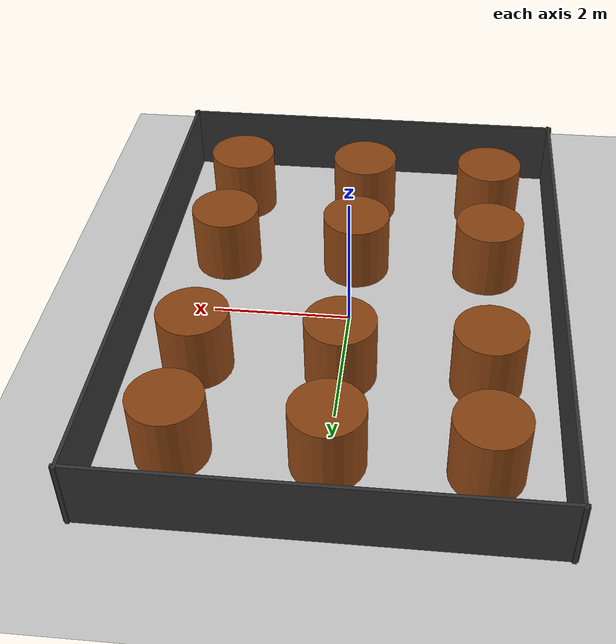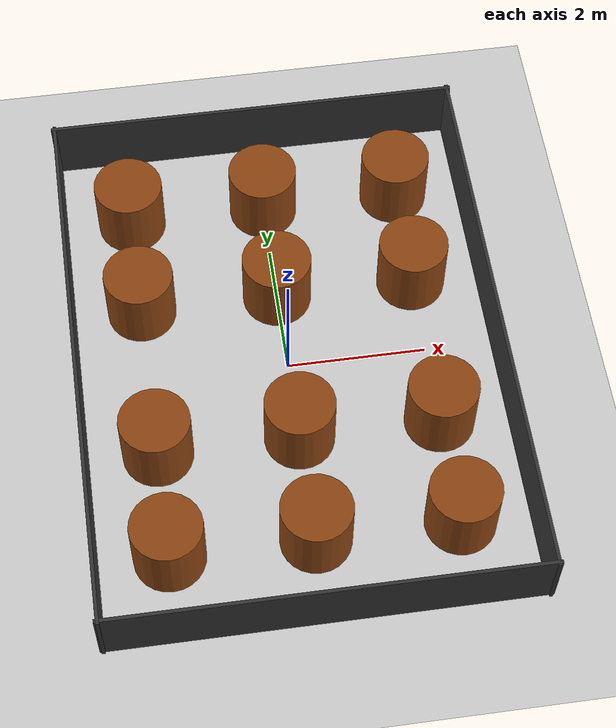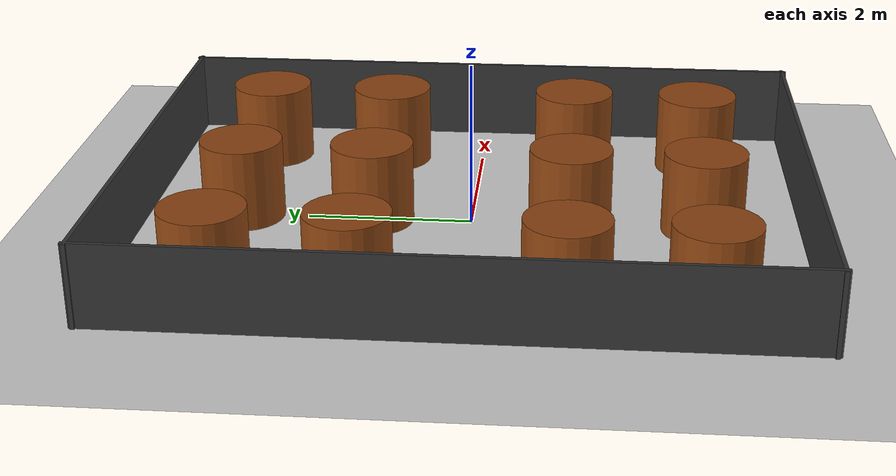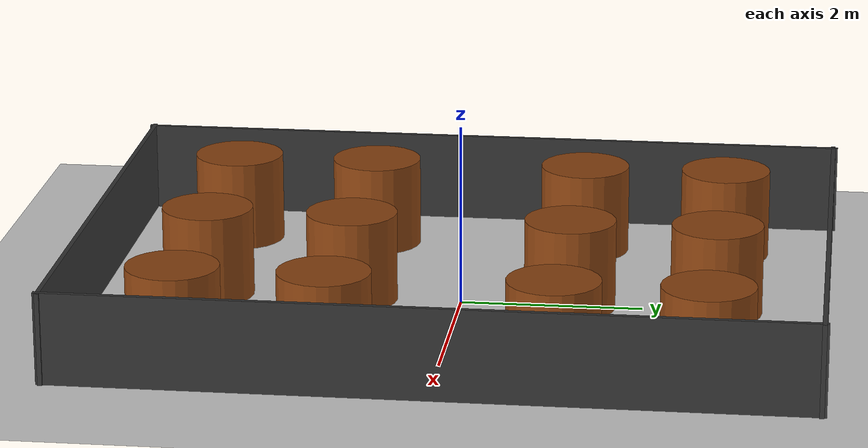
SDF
<?xml version="1.0" ?>
<sdf version="1.8">
  <world name="custom_world">

    <physics type="ode">
      <max_step_size>0.001</max_step_size>
      <real_time_factor>1</real_time_factor>
      <real_time_update_rate>1000</real_time_update_rate>
      <ode>
        <solver>
          <type>quick</type>
          <iters>150</iters>
          <precon_iters>0</precon_iters>
          <sor>1.400000</sor>
          <use_dynamic_moi_rescaling>1</use_dynamic_moi_rescaling>
        </solver>
        <constraints>
          <cfm>0.00001</cfm>
          <erp>0.2</erp>
          <contact_max_correcting_vel>2000.000000</contact_max_correcting_vel>
          <contact_surface_layer>0.01000</contact_surface_layer>
        </constraints>
      </ode>
    </physics>

    <plugin filename="gz-sim-physics-system" name="gz::sim::systems::Physics"></plugin>
    <plugin filename="gz-sim-user-commands-system" name="gz::sim::systems::UserCommands"></plugin>
    <plugin filename="gz-sim-scene-broadcaster-system" name="gz::sim::systems::SceneBroadcaster"></plugin>
    <plugin filename="gz-sim-sensors-system" name="gz::sim::systems::Sensors">
      <render_engine>ogre2</render_engine>
    </plugin>
    <plugin filename="gz-sim-imu-system" name="gz::sim::systems::Imu"></plugin>

    <include>
      <uri>https://fuel.gazebosim.org/1.0/OpenRobotics/models/Ground Plane</uri>
    </include>
    <include>
      <uri>https://fuel.gazebosim.org/1.0/OpenRobotics/models/Sun</uri>
    </include>

    <!-- ── Boundary walls: x ∈ [-3,3]  y ∈ [-4,4] ── -->
    <model name="wall_south">
      <static>true</static>
      <pose>0 -4 0.5 0 0 0</pose>
      <link name="link">
        <collision name="collision"><geometry><box><size>6.1 0.05 1.0</size></box></geometry></collision>
        <visual name="visual"><geometry><box><size>6.1 0.05 1.0</size></box></geometry><material><ambient>0.2 0.2 0.2 1</ambient></material></visual>
      </link>
    </model>

    <model name="wall_north">
      <static>true</static>
      <pose>0 4 0.5 0 0 0</pose>
      <link name="link">
        <collision name="collision"><geometry><box><size>6.1 0.05 1.0</size></box></geometry></collision>
        <visual name="visual"><geometry><box><size>6.1 0.05 1.0</size></box></geometry><material><ambient>0.2 0.2 0.2 1</ambient></material></visual>
      </link>
    </model>

    <model name="wall_west">
      <static>true</static>
      <pose>-3 0 0.5 0 0 0</pose>
      <link name="link">
        <collision name="collision"><geometry><box><size>0.05 8.1 1.0</size></box></geometry></collision>
        <visual name="visual"><geometry><box><size>0.05 8.1 1.0</size></box></geometry><material><ambient>0.2 0.2 0.2 1</ambient></material></visual>
      </link>
    </model>

    <model name="wall_east">
      <static>true</static>
      <pose>3 0 0.5 0 0 0</pose>
      <link name="link">
        <collision name="collision"><geometry><box><size>0.05 8.1 1.0</size></box></geometry></collision>
        <visual name="visual"><geometry><box><size>0.05 8.1 1.0</size></box></geometry><material><ambient>0.2 0.2 0.2 1</ambient></material></visual>
      </link>
    </model>

    <include><uri>model://cylinder_obstacle</uri><name>cyl_t_00</name><pose>-2.0 1.2 0.5 0 0 0</pose></include>
    <include><uri>model://cylinder_obstacle</uri><name>cyl_t_10</name><pose> 0.0 1.2 0.5 0 0 0</pose></include>
    <include><uri>model://cylinder_obstacle</uri><name>cyl_t_20</name><pose> 2.0 1.2 0.5 0 0 0</pose></include>

    <include><uri>model://cylinder_obstacle</uri><name>cyl_t_01</name><pose>-2.0 2.8 0.5 0 0 0</pose></include>
    <include><uri>model://cylinder_obstacle</uri><name>cyl_t_11</name><pose> 0.0 2.8 0.5 0 0 0</pose></include>
    <include><uri>model://cylinder_obstacle</uri><name>cyl_t_21</name><pose> 2.0 2.8 0.5 0 0 0</pose></include>

    <!-- ════════════════════════════════════════════════
         BOTTOM ZONE  (y < 0)  —  Robot1 starts at (0, -3.5)
         Mirror of top zone: y → -y
    ════════════════════════════════════════════════ -->

    <include><uri>model://cylinder_obstacle</uri><name>cyl_b_00</name><pose>-2.0 -1.2 0.5 0 0 0</pose></include>
    <include><uri>model://cylinder_obstacle</uri><name>cyl_b_10</name><pose> 0.0 -1.2 0.5 0 0 0</pose></include>
    <include><uri>model://cylinder_obstacle</uri><name>cyl_b_20</name><pose> 2.0 -1.2 0.5 0 0 0</pose></include>

    <include><uri>model://cylinder_obstacle</uri><name>cyl_b_01</name><pose>-2.0 -2.8 0.5 0 0 0</pose></include>
    <include><uri>model://cylinder_obstacle</uri><name>cyl_b_11</name><pose> 0.0 -2.8 0.5 0 0 0</pose></include>
    <include><uri>model://cylinder_obstacle</uri><name>cyl_b_21</name><pose> 2.0 -2.8 0.5 0 0 0</pose></include>

  </world>
</sdf>

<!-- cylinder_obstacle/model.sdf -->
<!--
  Cylinder Obstacle Model
  =======================
  Generic static cylindrical obstacle.
  Default: radius = 0.5 m, length (height) = 1.0 m
-->
<sdf version="1.8">
  <model name="cylinder_obstacle">
    <static>true</static>

    <link name="link">

      <inertial>
        <mass>1000</mass>
        <inertia>
          <ixx>1</ixx><ixy>0</ixy><ixz>0</ixz>
          <iyy>1</iyy><iyz>0</iyz>
          <izz>1</izz>
        </inertia>
      </inertial>

      <collision name="collision">
        <geometry>
          <cylinder>
            <radius>0.5</radius>
            <length>1.0</length>
          </cylinder>
        </geometry>
        <surface>
          <contact><ode/></contact>
          <friction><ode><mu>100</mu><mu2>50</mu2></ode></friction>
        </surface>
      </collision>

      <visual name="visual">
        <geometry>
          <cylinder>
            <radius>0.5</radius>
            <length>1.0</length>
          </cylinder>
        </geometry>
        <material>
          <!-- Brown-grey -->
          <ambient>0.55 0.27 0.07 1</ambient>
          <diffuse>0.55 0.27 0.07 1</diffuse>
          <specular>0.1 0.1 0.1 1</specular>
          <emissive>0 0 0 1</emissive>
        </material>
      </visual>

    </link>
  </model>
</sdf>
